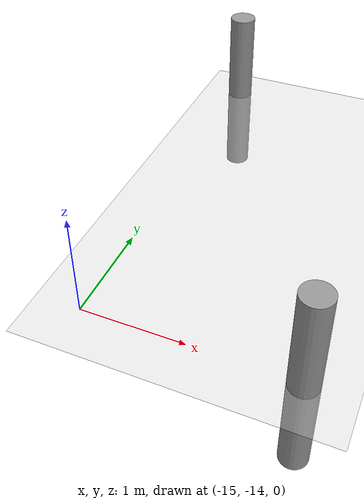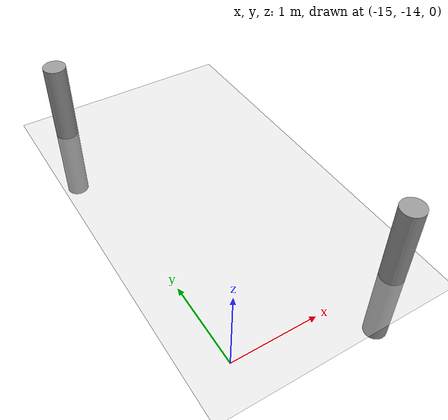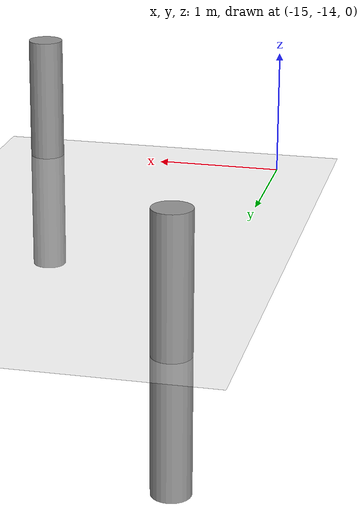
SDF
<sdf version="1.6">
 <world name="default">
  <model name="ground_plane">
   <static>1</static>
   <link name="link">
    <collision name="collision">
     <geometry><plane><normal>0 0 1</normal><size>100 100</size></plane></geometry>
     <surface><friction><ode><mu>100</mu><mu2>50</mu2></ode></friction></surface>
    </collision>
    <visual name="visual">
     <cast_shadows>0</cast_shadows>
     <geometry><plane><normal>0 0 1</normal><size>100 100</size></plane></geometry>
     <material>
      <script><uri>file://media/materials/scripts/gazebo.material</uri><name>Gazebo/Grey</name></script>
     </material>
    </visual>
   </link>
  </model>
  <model name="my_cylinder014_clone_16">
   <pose>-15 -10 0 0 -0 0</pose>
   <link name="my_cylinder014::link">
    <inertial>
     <mass>1</mass>
     <inertia><ixx>0.145833</ixx><ixy>0</ixy><ixz>0</ixz><iyy>0.145833</iyy><iyz>0</iyz><izz>0.125</izz></inertia>
    </inertial>
    <visual name="visual">
     <geometry><cylinder><radius>0.14</radius><length>2</length></cylinder></geometry>
     <material>
      <script><name>Gazebo/Grey</name><uri>file://media/materials/scripts/gazebo.material</uri></script>
      <ambient>0.3 0.3 0.3 1</ambient>
      <diffuse>0.7 0.7 0.7 1</diffuse>
      <specular>1 0.01 0.01 1</specular>
      <emissive>0 0 0 1</emissive>
      <shader type="vertex"><normal_map>__default__</normal_map></shader>
     </material>
    </visual>
    <collision name="collision">
     <geometry><cylinder><radius>0.14</radius><length>2</length></cylinder></geometry>
     <surface>
      <friction>
       <ode><mu>1</mu><mu2>1</mu2><fdir1>0 0 0</fdir1><slip1>0</slip1><slip2>0</slip2></ode>
       <torsional>
        <coefficient>1</coefficient>
        <patch_radius>0</patch_radius>
        <surface_radius>0</surface_radius>
        <use_patch_radius>1</use_patch_radius>
        <ode><slip>0</slip></ode>
       </torsional>
      </friction>
      <bounce><restitution_coefficient>0</restitution_coefficient><threshold>1e+06</threshold></bounce>
      <contact>
       <collide_without_contact>0</collide_without_contact>
       <collide_without_contact_bitmask>1</collide_without_contact_bitmask>
       <collide_bitmask>1</collide_bitmask>
       <ode>
        <soft_cfm>0</soft_cfm>
        <soft_erp>0.2</soft_erp>
        <kp>1e+13</kp>
        <kd>1</kd>
        <max_vel>0.01</max_vel>
        <min_depth>0</min_depth>
       </ode>
       <bullet>
        <split_impulse>1</split_impulse>
        <split_impulse_penetration_threshold>-0.01</split_impulse_penetration_threshold>
        <soft_cfm>0</soft_cfm>
        <soft_erp>0.2</soft_erp>
        <kp>1e+13</kp>
        <kd>1</kd>
       </bullet>
      </contact>
     </surface>
    </collision>
   </link>
   <static>1</static>
  </model>
  <model name="my_cylinder014_clone_16">
   <pose>-15 -10 0 0 -0 0</pose>
   <link name="my_cylinder014::link">
    <inertial>
     <mass>1</mass>
     <inertia><ixx>0.145833</ixx><ixy>0</ixy><ixz>0</ixz><iyy>0.145833</iyy><iyz>0</iyz><izz>0.125</izz></inertia>
    </inertial>
    <visual name="visual">
     <geometry><cylinder><radius>0.14</radius><length>2</length></cylinder></geometry>
     <material>
      <script><name>Gazebo/Grey</name><uri>file://media/materials/scripts/gazebo.material</uri></script>
      <ambient>0.3 0.3 0.3 1</ambient>
      <diffuse>0.7 0.7 0.7 1</diffuse>
      <specular>1 0.01 0.01 1</specular>
      <emissive>0 0 0 1</emissive>
      <shader type="vertex"><normal_map>__default__</normal_map></shader>
     </material>
    </visual>
    <collision name="collision">
     <geometry><cylinder><radius>0.14</radius><length>2</length></cylinder></geometry>
     <surface>
      <friction>
       <ode><mu>1</mu><mu2>1</mu2><fdir1>0 0 0</fdir1><slip1>0</slip1><slip2>0</slip2></ode>
       <torsional>
        <coefficient>1</coefficient>
        <patch_radius>0</patch_radius>
        <surface_radius>0</surface_radius>
        <use_patch_radius>1</use_patch_radius>
        <ode><slip>0</slip></ode>
       </torsional>
      </friction>
      <bounce><restitution_coefficient>0</restitution_coefficient><threshold>1e+06</threshold></bounce>
      <contact>
       <collide_without_contact>0</collide_without_contact>
       <collide_without_contact_bitmask>1</collide_without_contact_bitmask>
       <collide_bitmask>1</collide_bitmask>
       <ode>
        <soft_cfm>0</soft_cfm>
        <soft_erp>0.2</soft_erp>
        <kp>1e+13</kp>
        <kd>1</kd>
        <max_vel>0.01</max_vel>
        <min_depth>0</min_depth>
       </ode>
       <bullet>
        <split_impulse>1</split_impulse>
        <split_impulse_penetration_threshold>-0.01</split_impulse_penetration_threshold>
        <soft_cfm>0</soft_cfm>
        <soft_erp>0.2</soft_erp>
        <kp>1e+13</kp>
        <kd>1</kd>
       </bullet>
      </contact>
     </surface>
    </collision>
   </link>
   <static>1</static>
  </model>
  <model name="my_cylinder014_clone_1">
   <pose>-13 -14 0 0 -0 0</pose>
   <link name="my_cylinder014::link">
    <inertial>
     <mass>1</mass>
     <inertia><ixx>0.145833</ixx><ixy>0</ixy><ixz>0</ixz><iyy>0.145833</iyy><iyz>0</iyz><izz>0.125</izz></inertia>
    </inertial>
    <visual name="visual">
     <geometry><cylinder><radius>0.14</radius><length>2</length></cylinder></geometry>
     <material>
      <script><name>Gazebo/Grey</name><uri>file://media/materials/scripts/gazebo.material</uri></script>
      <ambient>0.3 0.3 0.3 1</ambient>
      <diffuse>0.7 0.7 0.7 1</diffuse>
      <specular>1 0.01 0.01 1</specular>
      <emissive>0 0 0 1</emissive>
      <shader type="vertex"><normal_map>__default__</normal_map></shader>
     </material>
    </visual>
    <collision name="collision">
     <geometry><cylinder><radius>0.14</radius><length>2</length></cylinder></geometry>
     <surface>
      <friction>
       <ode><mu>1</mu><mu2>1</mu2><fdir1>0 0 0</fdir1><slip1>0</slip1><slip2>0</slip2></ode>
       <torsional>
        <coefficient>1</coefficient>
        <patch_radius>0</patch_radius>
        <surface_radius>0</surface_radius>
        <use_patch_radius>1</use_patch_radius>
        <ode><slip>0</slip></ode>
       </torsional>
      </friction>
      <bounce><restitution_coefficient>0</restitution_coefficient><threshold>1e+06</threshold></bounce>
      <contact>
       <collide_without_contact>0</collide_without_contact>
       <collide_without_contact_bitmask>1</collide_without_contact_bitmask>
       <collide_bitmask>1</collide_bitmask>
       <ode>
        <soft_cfm>0</soft_cfm>
        <soft_erp>0.2</soft_erp>
        <kp>1e+13</kp>
        <kd>1</kd>
        <max_vel>0.01</max_vel>
        <min_depth>0</min_depth>
       </ode>
       <bullet>
        <split_impulse>1</split_impulse>
        <split_impulse_penetration_threshold>-0.01</split_impulse_penetration_threshold>
        <soft_cfm>0</soft_cfm>
        <soft_erp>0.2</soft_erp>
        <kp>1e+13</kp>
        <kd>1</kd>
       </bullet>
      </contact>
     </surface>
    </collision>
   </link>
   <static>1</static>
  </model>
 </world>
</sdf>
